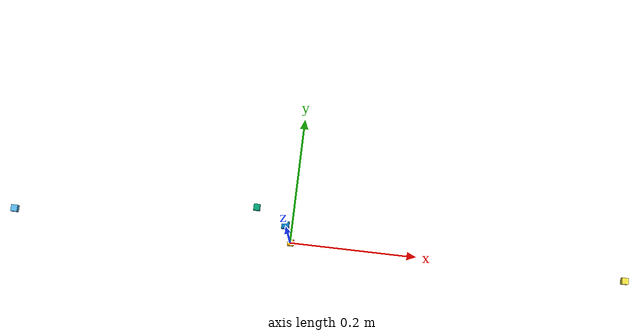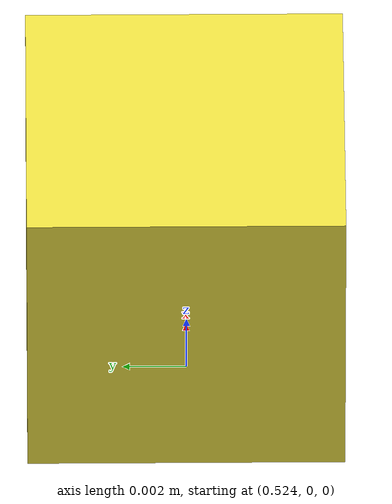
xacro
<robot name="rack">

    <link name="base_link">
      <visual>
        <origin xyz="0 0 0" rpy="0 0 0"/>
        <geometry>
          <box size="0.01 0.01 0.01"/>
        </geometry>
      </visual>
      <collision>
        <origin xyz="0 0 0" rpy="0 0 0"/>
        <geometry>
          <box size="0.01 0.01 0.01"/>
        </geometry>
      </collision>
      <collision>
        <origin xyz="0 0 0" rpy="0 0 0"/>
        <geometry>
          <box size="0.01 0.01 0.01"/>
        </geometry>
      </collision>
    </link>

    <link name="odom">
      <visual>
        <origin xyz="0 0 0" rpy="0 0 0"/>
        <geometry>
          <box size="0.01 0.01 0.01"/>
        </geometry>
      </visual>
      <collision>
        <origin xyz="0 0 0" rpy="0 0 0"/>
        <geometry>
          <box size="0.01 0.01 0.01"/>
        </geometry>
      </collision>
      <collision>
        <origin xyz="0 0 0" rpy="0 0 0"/>
        <geometry>
          <box size="0.01 0.01 0.01"/>
        </geometry>
      </collision>
    </link>

    <link name="imu_link">
      <visual>
        <origin xyz="0 0 0" rpy="0 0 0"/>
        <geometry>
          <box size="0.01 0.01 0.01"/>
        </geometry>
      </visual>
      <collision>
        <origin xyz="0 0 0" rpy="0 0 0"/>
        <geometry>
          <box size="0.01 0.01 0.01"/>
        </geometry>
      </collision>
      <collision>
        <origin xyz="0 0 0" rpy="0 0 0"/>
        <geometry>
          <box size="0.01 0.01 0.01"/>
        </geometry>
      </collision>
    </link>

    <link name="camera">
      <visual>
        <origin xyz="0 0 0" rpy="0 0 0"/>
        <geometry>
          <box size="0.01 0.01 0.01"/>
        </geometry>
      </visual>
      <collision>
        <origin xyz="0 0 0" rpy="0 0 0"/>
        <geometry>
          <box size="0.01 0.01 0.01"/>
        </geometry>
      </collision>
      <collision>
        <origin xyz="0 0 0" rpy="0 0 0"/>
        <geometry>
          <box size="0.01 0.01 0.01"/>
        </geometry>
      </collision>
    </link>

    <link name="velodyne">
      <visual>
        <origin xyz="0 0 0" rpy="0 0 0"/>
        <geometry>
          <box size="0.01 0.01 0.01"/>
        </geometry>
      </visual>
      <collision>
        <origin xyz="0 0 0" rpy="0 0 0"/>
        <geometry>
          <box size="0.01 0.01 0.01"/>
        </geometry>
      </collision>
      <collision>
        <origin xyz="0 0 0" rpy="0 0 0"/>
        <geometry>
          <box size="0.01 0.01 0.01"/>
        </geometry>
      </collision>
    </link>

      <joint name="imu_joint" type="fixed">
        <origin xyz="-0.06 0.05 0" rpy="0 0 0"/>
        <parent link="base_link"/>
        <child link="imu_link"/>
      </joint>

      <joint name="velodyne_joint" type="fixed">
        <origin xyz="0 0 0.22" rpy="0 0 0"/>
        <parent link="base_link"/>
        <child link="velodyne"/>
      </joint>

      <joint name="gps_joint" type="fixed">
        <origin xyz="-0.43 0.0 0.04" rpy="0 0 0.0"/>
        <parent link="base_link"/>
        <child link="odom"/>
      </joint>

      <joint name="camera_joint" type="fixed">
        <origin xyz="0.53 0 0" rpy="-1.5707963267948966 0 -1.5707963267948966"/>
        <parent link="base_link"/>
        <child link="camera"/>
      </joint>

</robot>
